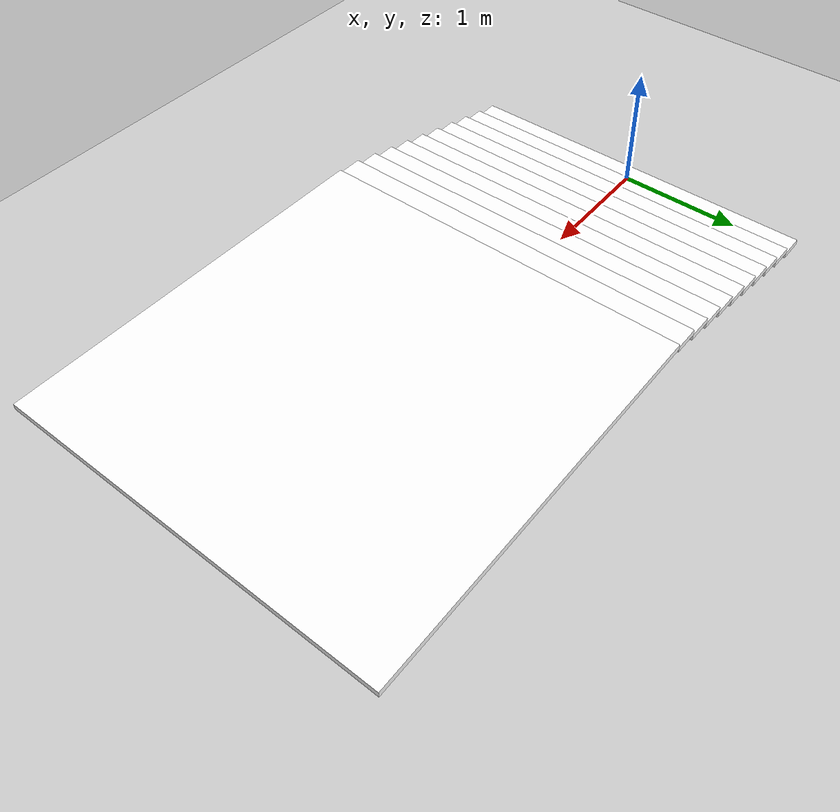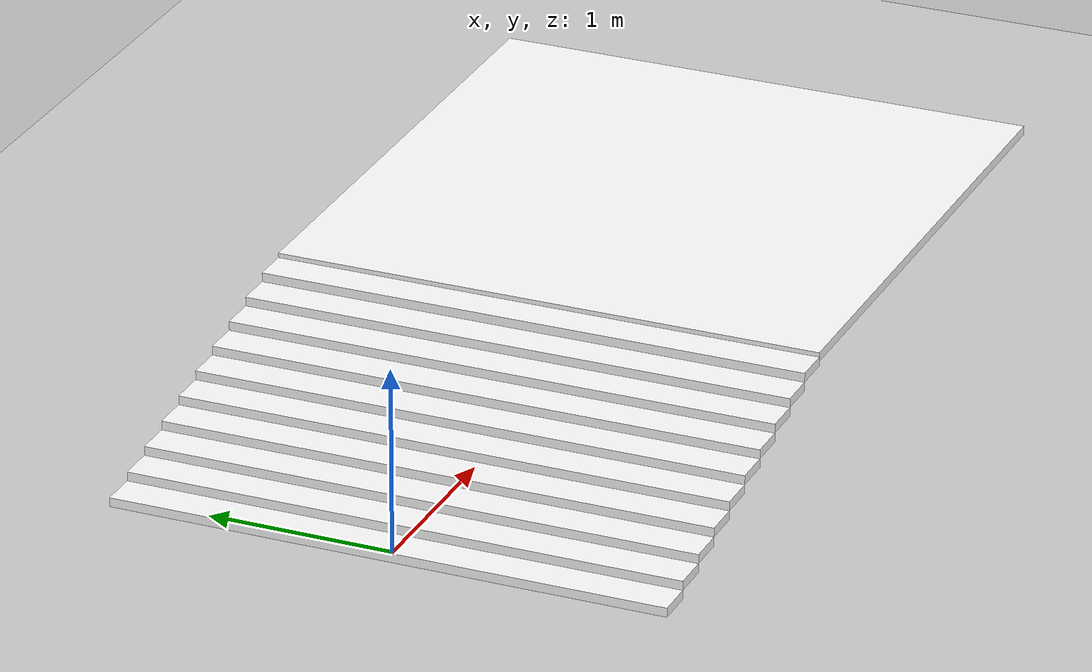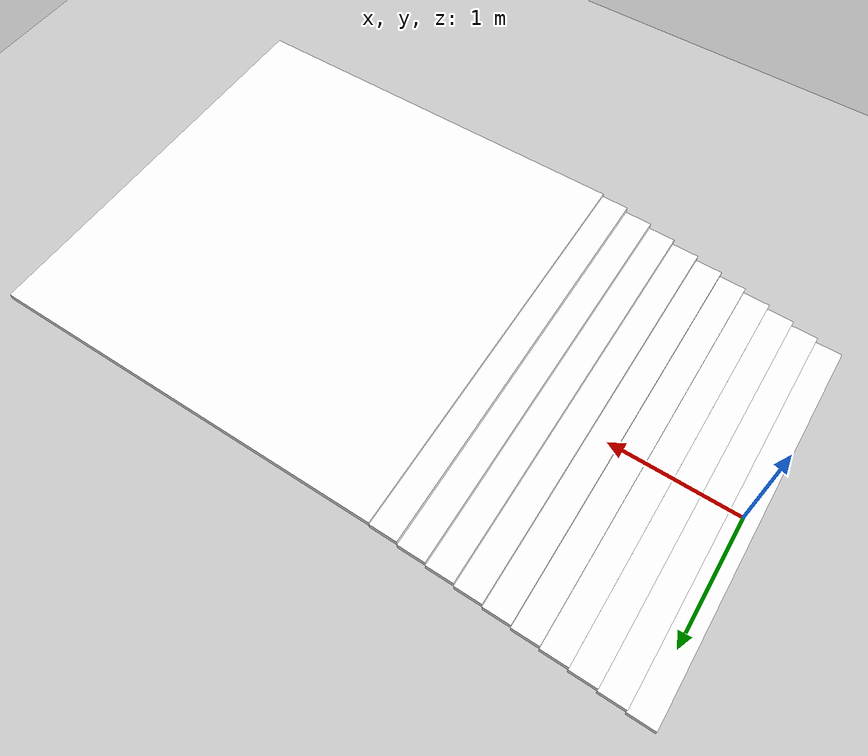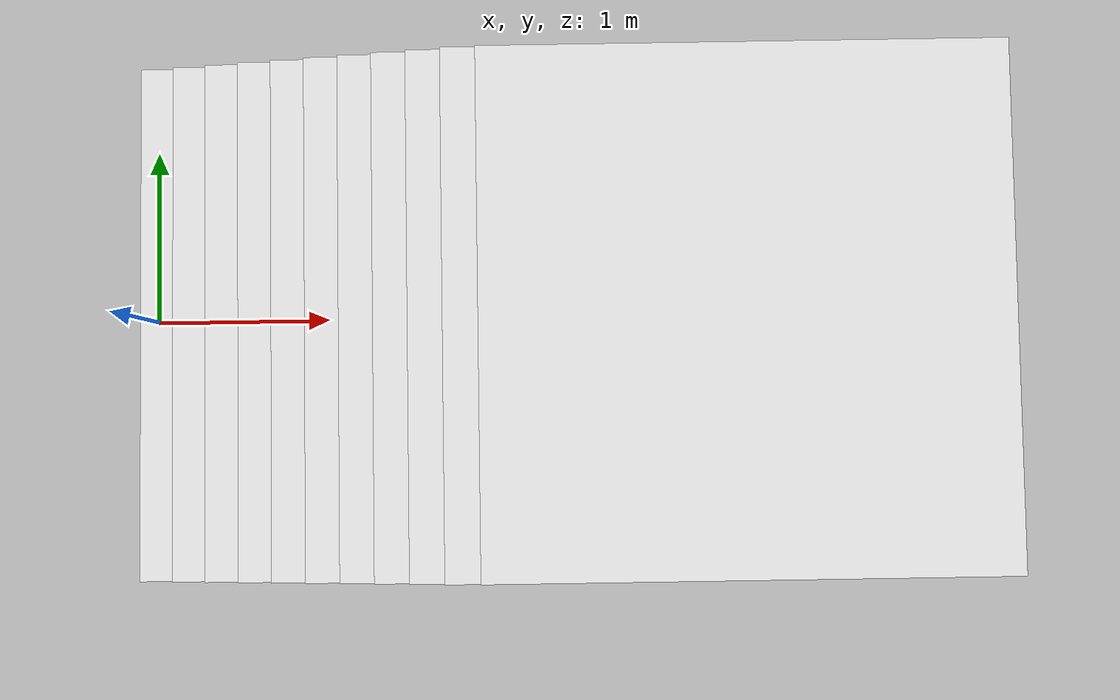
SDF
<sdf version="1.7">
  <world name="default">

    <!-- Need to be able to manipulate model state -->
    <plugin name="gazebo_ros_state" filename="libgazebo_ros_state.so">
      <ros>
        <namespace>/gazebo</namespace>
      </ros>

      <update_rate>1.0</update_rate>
    </plugin>

    <!-- Need to be able to manipulate model configuration -->
    <plugin name="gazebo_ros_properties" filename="libgazebo_ros_properties.so">
      <ros>
        <namespace>/gazebo</namespace>
      </ros>

      <update_rate>1.0</update_rate>
    </plugin>

    <physics type="ode">
    <max_step_size>0.001</max_step_size>
    <real_time_factor>1.0</real_time_factor>
    <real_time_update_rate>1000</real_time_update_rate>
    <gravity>0 0 -9.81</gravity>
        <ode>
            <solver>
            <type>quick</type>
            <iters>50</iters>
            <sor>1.3</sor>
            </solver>
            <constraints>
            <cfm>0.0</cfm>
            <erp>0.2</erp>
            <contact_max_correcting_vel>10.0</contact_max_correcting_vel>
            <contact_surface_layer>0.001</contact_surface_layer>
            </constraints>
        </ode>
    </physics>

    <!-- A global light source -->
    <include>
        <uri>model://sun</uri>
    </include>
    <!-- A ground plane -->
    <include>
        <uri>model://ground_plane</uri>
    </include>

    <model name="static_environment">
  <static>true</static>
  <link name="region_0">
    <pose>0.0 0.0 0.025 0.0 0.0 0.0</pose>
    <collision name="region_0_collision">
      <geometry>
        <box>
          <size>0.2 3.0 0.05</size>
        </box>
      </geometry>
      <surface>
        <friction>
          <ode>
            <mu>1.0</mu>
            <mu2>1.0</mu2>
          </ode>
        </friction>
      </surface>
    </collision>
    <visual name="region_0_visual">
      <geometry>
        <box>
          <size>0.2 3.0 0.05</size>
        </box>
      </geometry>
      <material>
        <ambient>1.0 1.0 1.0 1.0</ambient>
        <diffuse>1.0 1.0 1.0 1.0</diffuse>
      </material>
    </visual>
  </link>
  <link name="region_1">
    <pose>0.2 0.0 0.07500000000000001 0.0 0.0 0.0</pose>
    <collision name="region_1_collision">
      <geometry>
        <box>
          <size>0.2 3.0 0.05</size>
        </box>
      </geometry>
      <surface>
        <friction>
          <ode>
            <mu>1.0</mu>
            <mu2>1.0</mu2>
          </ode>
        </friction>
      </surface>
    </collision>
    <visual name="region_1_visual">
      <geometry>
        <box>
          <size>0.2 3.0 0.05</size>
        </box>
      </geometry>
      <material>
        <ambient>1.0 1.0 1.0 1.0</ambient>
        <diffuse>1.0 1.0 1.0 1.0</diffuse>
      </material>
    </visual>
  </link>
  <link name="region_2">
    <pose>0.4 0.0 0.125 0.0 0.0 0.0</pose>
    <collision name="region_2_collision">
      <geometry>
        <box>
          <size>0.2 3.0 0.05</size>
        </box>
      </geometry>
      <surface>
        <friction>
          <ode>
            <mu>1.0</mu>
            <mu2>1.0</mu2>
          </ode>
        </friction>
      </surface>
    </collision>
    <visual name="region_2_visual">
      <geometry>
        <box>
          <size>0.2 3.0 0.05</size>
        </box>
      </geometry>
      <material>
        <ambient>1.0 1.0 1.0 1.0</ambient>
        <diffuse>1.0 1.0 1.0 1.0</diffuse>
      </material>
    </visual>
  </link>
  <link name="region_3">
    <pose>0.6000000000000001 0.0 0.175 0.0 0.0 0.0</pose>
    <collision name="region_3_collision">
      <geometry>
        <box>
          <size>0.2 3.0 0.05</size>
        </box>
      </geometry>
      <surface>
        <friction>
          <ode>
            <mu>1.0</mu>
            <mu2>1.0</mu2>
          </ode>
        </friction>
      </surface>
    </collision>
    <visual name="region_3_visual">
      <geometry>
        <box>
          <size>0.2 3.0 0.05</size>
        </box>
      </geometry>
      <material>
        <ambient>1.0 1.0 1.0 1.0</ambient>
        <diffuse>1.0 1.0 1.0 1.0</diffuse>
      </material>
    </visual>
  </link>
  <link name="region_4">
    <pose>0.8 0.0 0.22499999999999998 0.0 0.0 0.0</pose>
    <collision name="region_4_collision">
      <geometry>
        <box>
          <size>0.2 3.0 0.05</size>
        </box>
      </geometry>
      <surface>
        <friction>
          <ode>
            <mu>1.0</mu>
            <mu2>1.0</mu2>
          </ode>
        </friction>
      </surface>
    </collision>
    <visual name="region_4_visual">
      <geometry>
        <box>
          <size>0.2 3.0 0.05</size>
        </box>
      </geometry>
      <material>
        <ambient>1.0 1.0 1.0 1.0</ambient>
        <diffuse>1.0 1.0 1.0 1.0</diffuse>
      </material>
    </visual>
  </link>
  <link name="region_5">
    <pose>1.0 0.0 0.27499999999999997 0.0 0.0 0.0</pose>
    <collision name="region_5_collision">
      <geometry>
        <box>
          <size>0.2 3.0 0.05</size>
        </box>
      </geometry>
      <surface>
        <friction>
          <ode>
            <mu>1.0</mu>
            <mu2>1.0</mu2>
          </ode>
        </friction>
      </surface>
    </collision>
    <visual name="region_5_visual">
      <geometry>
        <box>
          <size>0.2 3.0 0.05</size>
        </box>
      </geometry>
      <material>
        <ambient>1.0 1.0 1.0 1.0</ambient>
        <diffuse>1.0 1.0 1.0 1.0</diffuse>
      </material>
    </visual>
  </link>
  <link name="region_6">
    <pose>1.2 0.0 0.32499999999999996 0.0 0.0 0.0</pose>
    <collision name="region_6_collision">
      <geometry>
        <box>
          <size>0.2 3.0 0.05</size>
        </box>
      </geometry>
      <surface>
        <friction>
          <ode>
            <mu>1.0</mu>
            <mu2>1.0</mu2>
          </ode>
        </friction>
      </surface>
    </collision>
    <visual name="region_6_visual">
      <geometry>
        <box>
          <size>0.2 3.0 0.05</size>
        </box>
      </geometry>
      <material>
        <ambient>1.0 1.0 1.0 1.0</ambient>
        <diffuse>1.0 1.0 1.0 1.0</diffuse>
      </material>
    </visual>
  </link>
  <link name="region_7">
    <pose>1.4 0.0 0.37499999999999994 0.0 0.0 0.0</pose>
    <collision name="region_7_collision">
      <geometry>
        <box>
          <size>0.2 3.0 0.05</size>
        </box>
      </geometry>
      <surface>
        <friction>
          <ode>
            <mu>1.0</mu>
            <mu2>1.0</mu2>
          </ode>
        </friction>
      </surface>
    </collision>
    <visual name="region_7_visual">
      <geometry>
        <box>
          <size>0.2 3.0 0.05</size>
        </box>
      </geometry>
      <material>
        <ambient>1.0 1.0 1.0 1.0</ambient>
        <diffuse>1.0 1.0 1.0 1.0</diffuse>
      </material>
    </visual>
  </link>
  <link name="region_8">
    <pose>1.5999999999999999 0.0 0.42499999999999993 0.0 0.0 0.0</pose>
    <collision name="region_8_collision">
      <geometry>
        <box>
          <size>0.2 3.0 0.05</size>
        </box>
      </geometry>
      <surface>
        <friction>
          <ode>
            <mu>1.0</mu>
            <mu2>1.0</mu2>
          </ode>
        </friction>
      </surface>
    </collision>
    <visual name="region_8_visual">
      <geometry>
        <box>
          <size>0.2 3.0 0.05</size>
        </box>
      </geometry>
      <material>
        <ambient>1.0 1.0 1.0 1.0</ambient>
        <diffuse>1.0 1.0 1.0 1.0</diffuse>
      </material>
    </visual>
  </link>
  <link name="region_9">
    <pose>1.7999999999999998 0.0 0.4749999999999999 0.0 0.0 0.0</pose>
    <collision name="region_9_collision">
      <geometry>
        <box>
          <size>0.2 3.0 0.05</size>
        </box>
      </geometry>
      <surface>
        <friction>
          <ode>
            <mu>1.0</mu>
            <mu2>1.0</mu2>
          </ode>
        </friction>
      </surface>
    </collision>
    <visual name="region_9_visual">
      <geometry>
        <box>
          <size>0.2 3.0 0.05</size>
        </box>
      </geometry>
      <material>
        <ambient>1.0 1.0 1.0 1.0</ambient>
        <diffuse>1.0 1.0 1.0 1.0</diffuse>
      </material>
    </visual>
  </link>
  <link name="region_10">
    <pose>3.4000000000000004 0.0 0.5 0.0 0.0 0.0</pose>
    <collision name="region_10_collision">
      <geometry>
        <box>
          <size>3.0 3.0 0.05</size>
        </box>
      </geometry>
      <surface>
        <friction>
          <ode>
            <mu>1.0</mu>
            <mu2>1.0</mu2>
          </ode>
        </friction>
      </surface>
    </collision>
    <visual name="region_10_visual">
      <geometry>
        <box>
          <size>3.0 3.0 0.05</size>
        </box>
      </geometry>
      <material>
        <ambient>1.0 1.0 1.0 1.0</ambient>
        <diffuse>1.0 1.0 1.0 1.0</diffuse>
      </material>
    </visual>
  </link>
</model>
  </world>
</sdf>
